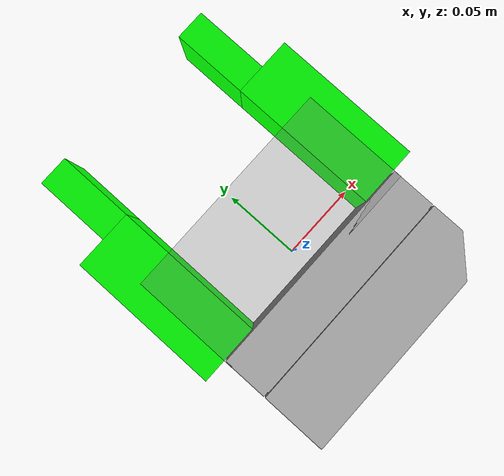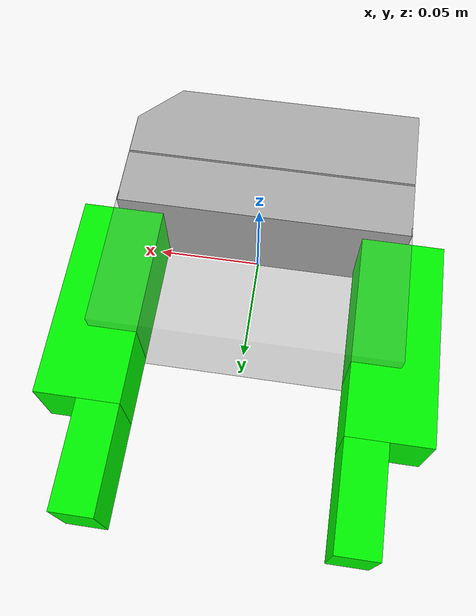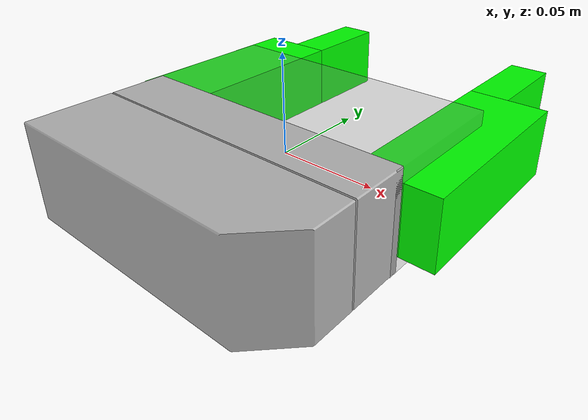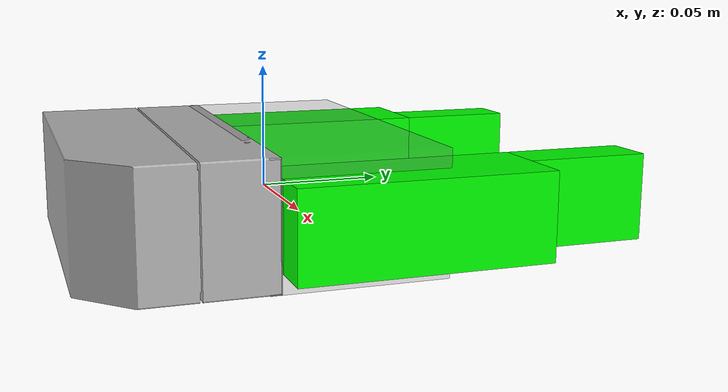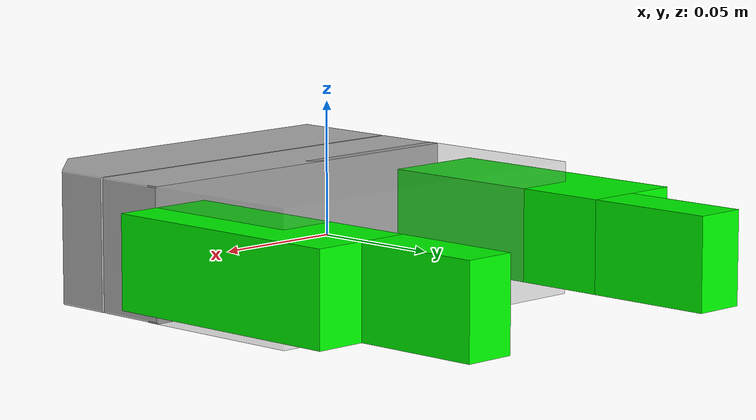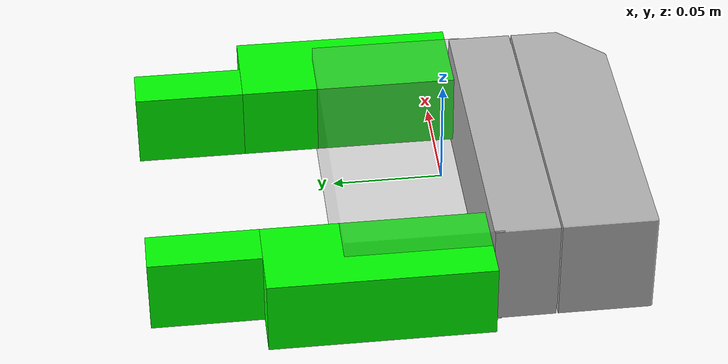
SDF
<?xml version="1.0"?>
<!-- This sdf file is based on schunk_wsg_50.sdf -->
<sdf version="1.7">
  <model name="Schunk_Gripper">
    <link name="body">
      <pose>0 -0.049133 0 0 0 0</pose>
      <inertial>
        <mass>0.988882</mass>
        <inertia>
          <ixx>0.162992</ixx>
          <ixy>0</ixy>
          <ixz>0</ixz>
          <iyy>0.162992</iyy>
          <iyz>0</iyz>
          <izz>0.164814</izz>
        </inertia>
      </inertial>
      <visual name="visual">
        <geometry>
          <mesh>
            <scale>1 1 1</scale>
            <uri>package://drake_models/wsg_50_description/meshes/wsg_body.gltf</uri>
          </mesh>
        </geometry>
        <material>
          <diffuse>0.7 0.7 0.7 1</diffuse>
        </material>
      </visual>
      <collision name="collision">
        <geometry>
          <box>
            <size>0.146 0.0725 0.05</size>
          </box>
        </geometry>
      </collision>
    </link>
    <link name="buffer">
      <visual name="visual">
        <pose> 0 0.0175 0 0 0 0</pose>
        <geometry>
          <box>
            <size>0.146 0.07 0.05</size>
          </box>
        </geometry>
        <material>
          <diffuse>0.5 0.5 0.5 0.3</diffuse>
        </material>
      </visual>
      <collision name="collision">
        <pose> 0 0.0175 0 0 0 0</pose>
        <geometry>
          <box>
            <size>0.146 0.07 0.05</size>
          </box>
        </geometry>
      </collision>
    </link>
    <frame name="body_frame">
      <pose relative_to="body"/>
    </frame>
    <link name="left_finger">
      <pose>-0.07 0.0375 0 0 3.141592 0</pose>
      <inertial>
        <mass>0.05</mass>
        <inertia>
          <ixx>0.16</ixx>
          <ixy>0</ixy>
          <ixz>0</ixz>
          <iyy>0.16</iyy>
          <iyz>0</iyz>
          <izz>0.16</izz>
        </inertia>
      </inertial>
      <kinematic>0</kinematic>
      <visual name="visual">
        <geometry>
          <box>
            <size>0.04 0.1 0.035</size>
          </box>
        </geometry>
        <material>
          <diffuse>0.0 1.0 0.0 1.0</diffuse>
        </material>
      </visual>
      <collision name="collision">
        <geometry>
          <box>
            <size>0.04 0.1 0.035</size>
          </box>
        </geometry>
        <drake:proximity_properties>
          <drake:compliant_hydroelastic/>
          <drake:hydroelastic_modulus>1.0e6</drake:hydroelastic_modulus>
          <drake:mu_static>100.0</drake:mu_static>
          <drake:mu_dynamic>100.0</drake:mu_dynamic>
        </drake:proximity_properties>
      </collision>
    </link>
    <link name="left_finger_tip">
      <pose>-0.06 0.1125 0 0 3.141592 0</pose>
      <inertial>
        <mass>0.05</mass>
        <inertia>
          <ixx>0.16</ixx>
          <ixy>0</ixy>
          <ixz>0</ixz>
          <iyy>0.16</iyy>
          <iyz>0</iyz>
          <izz>0.16</izz>
        </inertia>
      </inertial>
      <kinematic>0</kinematic>
      <visual name="visual">
        <geometry>
          <box>
            <size>0.02 0.05 0.035</size>
          </box>
        </geometry>
        <material>
          <diffuse>0.0 1.0 0.0 1.0</diffuse>
        </material>
      </visual>
      <collision name="collision">
        <geometry>
          <box>
            <size>0.02 0.05 0.035</size>
          </box>
        </geometry>
        <drake:proximity_properties>
          <drake:compliant_hydroelastic/>
          <drake:hydroelastic_modulus>1.0e6</drake:hydroelastic_modulus>
          <drake:mu_static>100.0</drake:mu_static>
          <drake:mu_dynamic>100.0</drake:mu_dynamic>
        </drake:proximity_properties>
      </collision>
    </link>
    <link name="right_finger">
      <pose>0.07 0.0375 0 0 0 0</pose>
      <inertial>
        <mass>0.05</mass>
        <inertia>
          <ixx>0.16</ixx>
          <ixy>0</ixy>
          <ixz>0</ixz>
          <iyy>0.16</iyy>
          <iyz>0</iyz>
          <izz>0.16</izz>
        </inertia>
      </inertial>
      <kinematic>0</kinematic>
      <visual name="visual">
        <geometry>
          <box>
            <size>0.04 0.1 0.035</size>
          </box>
        </geometry>
        <material>
          <diffuse>0.0 1.0 0.0 1.0</diffuse>
        </material>
      </visual>
      <collision name="collision">
        <geometry>
          <box>
            <size>0.04 0.1 0.035</size>
          </box>
        </geometry>
        <drake:proximity_properties>
          <drake:compliant_hydroelastic/>
          <drake:hydroelastic_modulus>1.0e6</drake:hydroelastic_modulus>
          <drake:mu_static>100.0</drake:mu_static>
          <drake:mu_dynamic>100.0</drake:mu_dynamic>
        </drake:proximity_properties>
      </collision>
    </link>
    <link name="right_finger_tip">
      <pose>0.06 0.1125 0 0 0 0</pose>
      <inertial>
        <mass>0.05</mass>
        <inertia>
          <ixx>0.16</ixx>
          <ixy>0</ixy>
          <ixz>0</ixz>
          <iyy>0.16</iyy>
          <iyz>0</iyz>
          <izz>0.16</izz>
        </inertia>
      </inertial>
      <kinematic>0</kinematic>
      <visual name="visual">
        <geometry>
          <box>
            <size>0.02 0.05 0.035</size>
          </box>
        </geometry>
        <material>
          <diffuse>0.0 1.0 0.0 1.0</diffuse>
        </material>
      </visual>
      <collision name="collision">
        <geometry>
          <box>
            <size>0.02 0.05 0.035</size>
          </box>
        </geometry>
        <drake:proximity_properties>
          <drake:compliant_hydroelastic/>
          <drake:hydroelastic_modulus>1.0e6</drake:hydroelastic_modulus>
          <drake:mu_static>100.0</drake:mu_static>
          <drake:mu_dynamic>100.0</drake:mu_dynamic>
        </drake:proximity_properties>
      </collision>
    </link>
    <joint name="left_finger_to_tip" type="fixed">
      <parent>left_finger</parent>
      <child>left_finger_tip</child>
    </joint>
    <joint name="right_finger_to_tip" type="fixed">
      <parent>right_finger</parent>
      <child>right_finger_tip</child>
    </joint>
    <joint name="left_finger_sliding_joint" type="fixed">
      <parent>body</parent>
      <child>left_finger</child>
    </joint>
    <joint name="right_finger_sliding_joint" type="fixed">
      <parent>body</parent>
      <child>right_finger</child>
    </joint>
    <joint name="buffer_to_body" type="fixed">
      <parent>body</parent>
      <child>buffer</child>
    </joint>
  </model>
</sdf>
